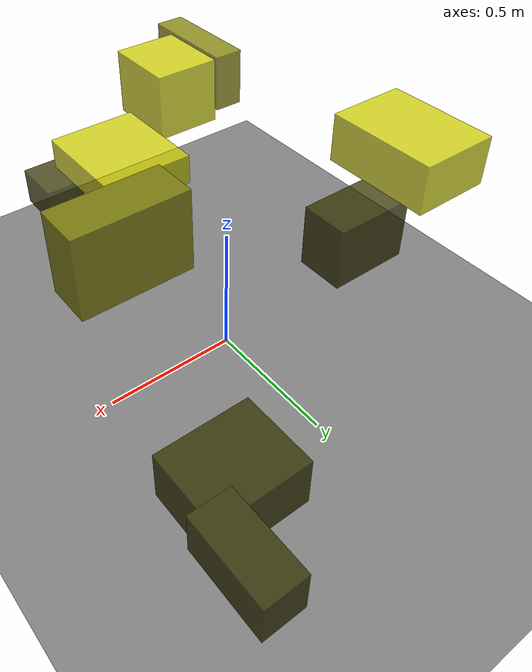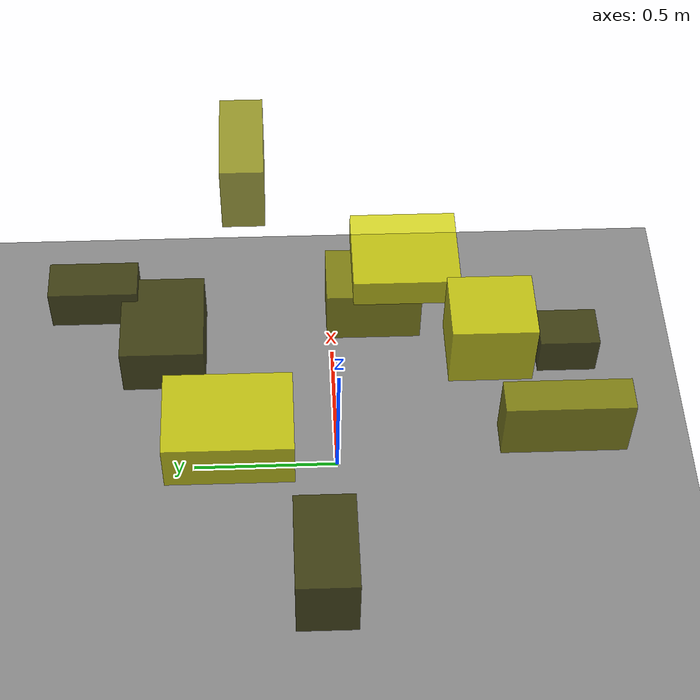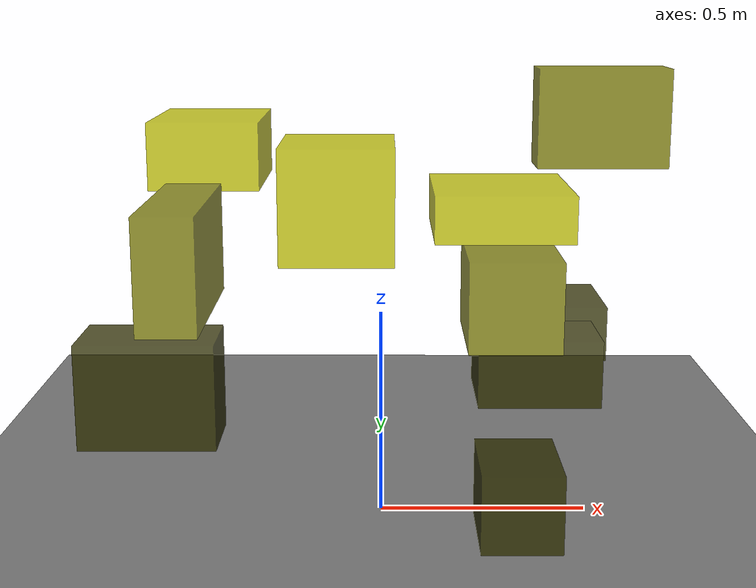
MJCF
<?xml version="1.0"?>
<mujoco model="obstacle_scene">
  <compiler angle="radian" coordinate="local"/>
  <option timestep="0.001" gravity="0 0 -9.81"/>

  <asset>
    <material name="obstacle_mat" rgba="0.8 0.8 0.0 0.8"/>
    <material name="ground_mat" rgba="0.5 0.5 0.5 1"/>
  </asset>

  <worldbody>
    <!-- Ground plane -->
    <geom name="ground" type="plane" size="3 3 0.1" material="ground_mat"/>

    <!-- Obstacles -->
    <body name="obstacle_0" pos="0.444324 0.603548 0.201254">
      <geom name="obs_0" type="box" size="0.173045 0.145760 0.096224" rgba="0.2 0.2 0.0 0.8"/>
    </body>
    <body name="obstacle_1" pos="-0.369742 -0.661167 0.773633">
      <geom name="obs_1" type="box" size="0.054162 0.191934 0.106617" rgba="0.5 0.5 0.0 0.8"/>
    </body>
    <body name="obstacle_2" pos="0.256890 -0.215973 0.789646">
      <geom name="obs_2" type="box" size="0.146493 0.168955 0.050492" rgba="0.8 0.8 0.0 0.8"/>
    </body>
    <body name="obstacle_3" pos="-0.568072 0.061912 0.292841">
      <geom name="obs_3" type="box" size="0.168776 0.100448 0.132038" rgba="0.2 0.2 0.0 0.8"/>
    </body>
    <body name="obstacle_4" pos="0.294561 -0.121411 0.574714">
      <geom name="obs_4" type="box" size="0.103654 0.154623 0.102636" rgba="0.5 0.5 0.0 0.8"/>
    </body>
    <body name="obstacle_5" pos="-0.085610 -0.454090 0.847433">
      <geom name="obs_5" type="box" size="0.111681 0.128642 0.113912" rgba="0.8 0.8 0.0 0.8"/>
    </body>
    <body name="obstacle_6" pos="0.248158 -0.788859 0.356942">
      <geom name="obs_6" type="box" size="0.073009 0.099373 0.073002" rgba="0.2 0.2 0.0 0.8"/>
    </body>
    <body name="obstacle_7" pos="0.556309 0.298183 0.936237">
      <geom name="obs_7" type="box" size="0.164757 0.069505 0.123667" rgba="0.5 0.5 0.0 0.8"/>
    </body>
    <body name="obstacle_8" pos="-0.438182 0.344986 0.850611">
      <geom name="obs_8" type="box" size="0.136950 0.190527 0.083762" rgba="0.8 0.8 0.0 0.8"/>
    </body>
    <body name="obstacle_9" pos="0.590850 0.849050 0.255476">
      <geom name="obs_9" type="box" size="0.074080 0.156869 0.080939" rgba="0.2 0.2 0.0 0.8"/>
    </body>
  </worldbody>
</mujoco>
